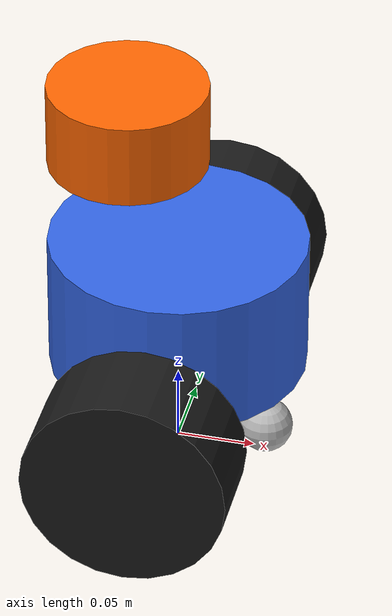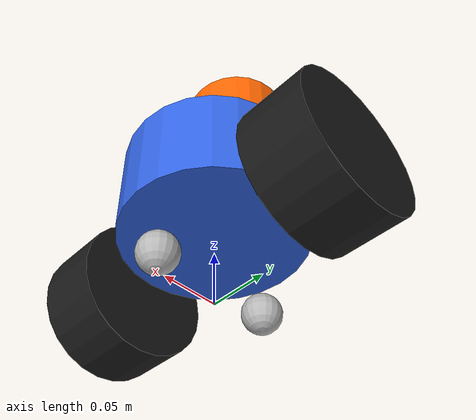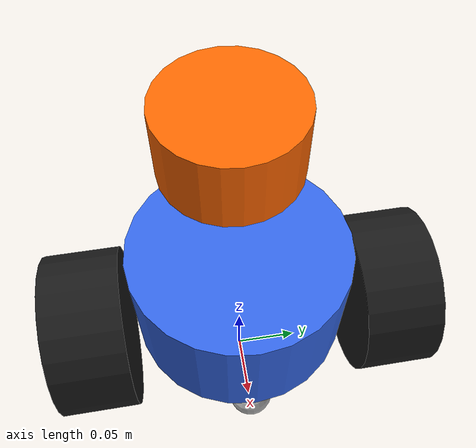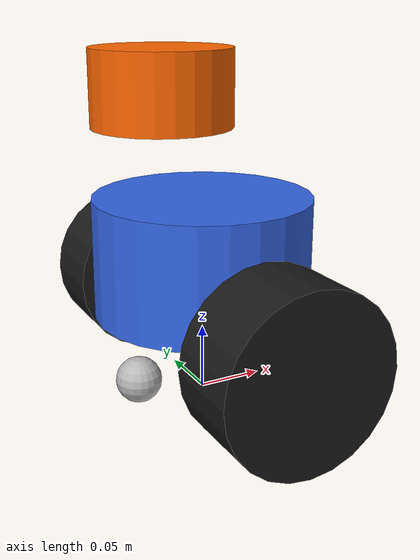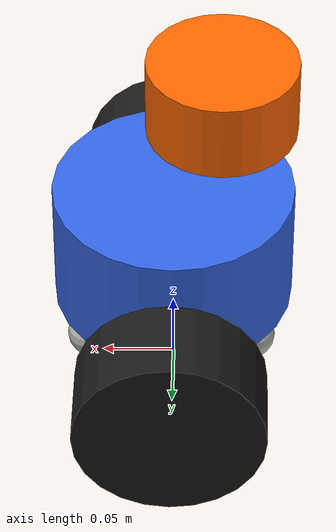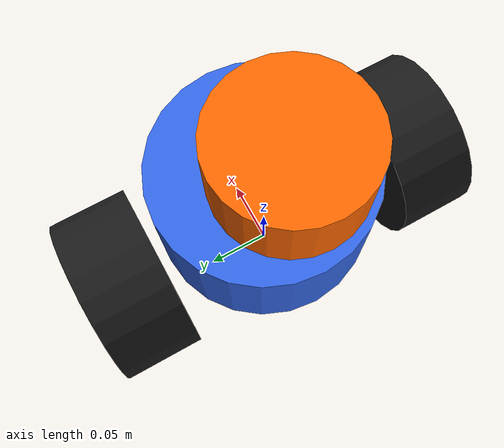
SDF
<?xml version="1.0" ?>
<sdf version="1.8">
  <model name="burgerbot">
    <pose>0 0 0.065 0 0 0</pose>

    <link name="base_link">
      <inertial>
        <mass>2.0</mass>
        <inertia><ixx>0.01</ixx><iyy>0.01</iyy><izz>0.01</izz><ixy>0</ixy><ixz>0</ixz><iyz>0</iyz></inertia>
      </inertial>
      <visual name="base_visual">
        <pose>0 0 0.045 0 0 0</pose>
        <geometry><cylinder><radius>0.0825</radius><length>0.09</length></cylinder></geometry>
        <material><ambient>0.2 0.4 0.9 1</ambient><diffuse>0.2 0.4 0.9 1</diffuse></material>
      </visual>
      <collision name="base_collision">
        <pose>0 0 0.045 0 0 0</pose>
        <geometry><cylinder><radius>0.0825</radius><length>0.09</length></cylinder></geometry>
      </collision>
    </link>

    <link name="left_wheel_link">
      <pose>0 0.12 0 -1.5707963 0 0</pose>
      <inertial><mass>0.25</mass><inertia><ixx>0.0006</ixx><iyy>0.0006</iyy><izz>0.0006</izz><ixy>0</ixy><ixz>0</ixz><iyz>0</iyz></inertia></inertial>
      <visual name="visual"><geometry><cylinder><radius>0.065</radius><length>0.06</length></cylinder></geometry><material><ambient>0.1 0.1 0.1 1</ambient></material></visual>
      <collision name="collision"><geometry><cylinder><radius>0.065</radius><length>0.06</length></cylinder></geometry><surface><friction><ode><mu>1.0</mu><mu2>1.0</mu2></ode></friction></surface></collision>
    </link>
    <joint name="left_wheel_joint" type="revolute">
      <parent>base_link</parent><child>left_wheel_link</child>
      <axis><xyz>0 0 1</xyz><limit><lower>-1e16</lower><upper>1e16</upper></limit></axis>
    </joint>

    <link name="right_wheel_link">
      <pose>0 -0.12 0 -1.5707963 0 0</pose>
      <inertial><mass>0.25</mass><inertia><ixx>0.0006</ixx><iyy>0.0006</iyy><izz>0.0006</izz><ixy>0</ixy><ixz>0</ixz><iyz>0</iyz></inertia></inertial>
      <visual name="visual"><geometry><cylinder><radius>0.065</radius><length>0.06</length></cylinder></geometry><material><ambient>0.1 0.1 0.1 1</ambient></material></visual>
      <collision name="collision"><geometry><cylinder><radius>0.065</radius><length>0.06</length></cylinder></geometry><surface><friction><ode><mu>1.0</mu><mu2>1.0</mu2></ode></friction></surface></collision>
    </link>
    <joint name="right_wheel_joint" type="revolute">
      <parent>base_link</parent><child>right_wheel_link</child>
      <axis><xyz>0 0 1</xyz><limit><lower>-1e16</lower><upper>1e16</upper></limit></axis>
    </joint>

    <link name="front_caster_link">
      <pose>0.0575 0 -0.0475 0 0 0</pose>
      <inertial><mass>0.05</mass><inertia><ixx>0.00002</ixx><iyy>0.00002</iyy><izz>0.00002</izz><ixy>0</ixy><ixz>0</ixz><iyz>0</iyz></inertia></inertial>
      <visual name="visual"><geometry><sphere><radius>0.0175</radius></sphere></geometry></visual>
      <collision name="collision"><geometry><sphere><radius>0.0175</radius></sphere></geometry><surface><friction><ode><mu>0.0</mu><mu2>0.0</mu2></ode></friction></surface></collision>
    </link>
    <joint name="front_caster_joint" type="fixed"><parent>base_link</parent><child>front_caster_link</child></joint>

    <link name="rear_caster_link">
      <pose>-0.0545 0 -0.0475 0 0 0</pose>
      <inertial><mass>0.05</mass><inertia><ixx>0.00002</ixx><iyy>0.00002</iyy><izz>0.00002</izz><ixy>0</ixy><ixz>0</ixz><iyz>0</iyz></inertia></inertial>
      <visual name="visual"><geometry><sphere><radius>0.0175</radius></sphere></geometry></visual>
      <collision name="collision"><geometry><sphere><radius>0.0175</radius></sphere></geometry><surface><friction><ode><mu>0.0</mu><mu2>0.0</mu2></ode></friction></surface></collision>
    </link>
    <joint name="rear_caster_joint" type="fixed"><parent>base_link</parent><child>rear_caster_link</child></joint>

    <!-- LiDAR LDS-01 avec gpu_lidar -->
    <link name="base_scan">
      <pose>-0.032 0 0.171 0 0 0</pose>
      <inertial><mass>0.114</mass><inertia><ixx>0.001</ixx><iyy>0.001</iyy><izz>0.001</izz><ixy>0</ixy><ixz>0</ixz><iyz>0</iyz></inertia></inertial>
      <visual name="visual">
        <geometry><cylinder><radius>0.0508</radius><length>0.055</length></cylinder></geometry>
        <material><ambient>1.0 0.4 0.0 1</ambient><diffuse>1.0 0.4 0.0 1</diffuse></material>
      </visual>
      <collision name="collision">
        <geometry><cylinder><radius>0.0508</radius><length>0.055</length></cylinder></geometry>
      </collision>
      <sensor name="lidar" type="gpu_lidar">
        <always_on>true</always_on>
        <visualize>true</visualize>
        <update_rate>10</update_rate>
        <lidar>
          <scan>
            <horizontal>
              <samples>360</samples>
              <resolution>1</resolution>
              <min_angle>-3.14159</min_angle>
              <max_angle>3.14159</max_angle>
            </horizontal>
          </scan>
          <range>
            <min>0.12</min>
            <max>3.5</max>
            <resolution>0.015</resolution>
          </range>
          <noise><type>gaussian</type><mean>0.0</mean><stddev>0.01</stddev></noise>
        </lidar>
        <topic>/scan</topic>
      </sensor>
    </link>
    <joint name="scan_joint" type="fixed"><parent>base_link</parent><child>base_scan</child></joint>

    <!-- Plugin Diff Drive -->
    <plugin filename="gz-sim-diff-drive-system"
            name="gz::sim::systems::DiffDrive">
      <left_joint>left_wheel_joint</left_joint>
      <right_joint>right_wheel_joint</right_joint>
      <wheel_separation>0.24</wheel_separation>
      <wheel_radius>0.065</wheel_radius>
      <odom_publish_frequency>10</odom_publish_frequency>
      <topic>/cmd_vel</topic>
      <odom_topic>/odom</odom_topic>
      <frame_id>odom</frame_id>
      <child_frame_id>base_link</child_frame_id>
    </plugin>

  </model>
</sdf>
